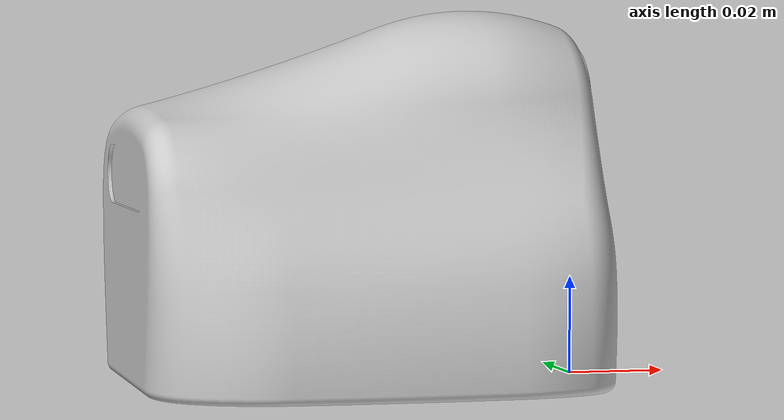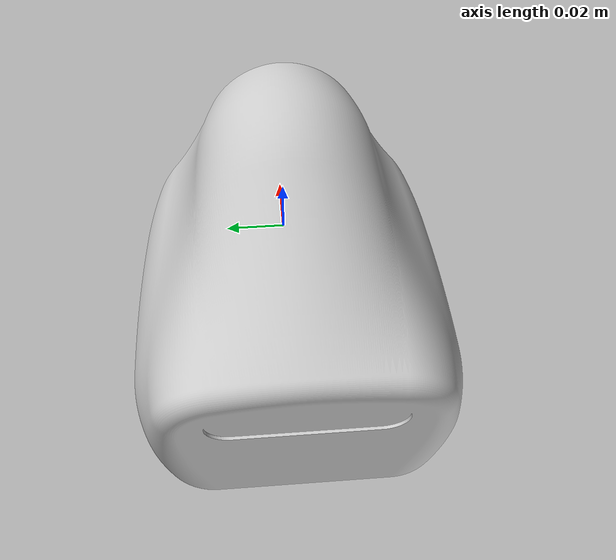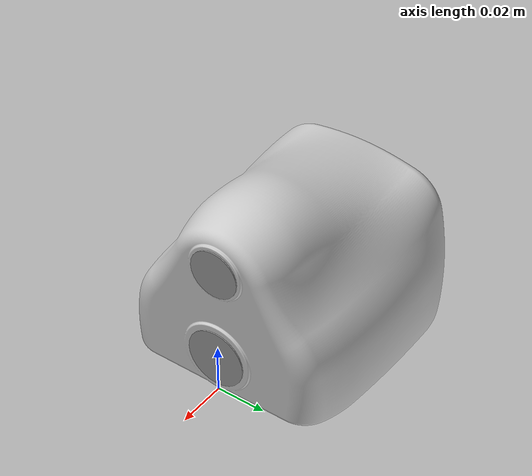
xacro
<?xml version="1.0"?>
<robot name="toroboeye_sl40" xmlns:xacro="http://ros.org/wiki/xacro">
  <xacro:arg name="prefix" default="toroboeye"/>
  <xacro:property name="M_PI" value="3.1415926535897931"/>
  <link name="$(arg prefix)/base_link"/>
  <joint name="$(arg prefix)/body_joint" type="fixed">
    <parent link="$(arg prefix)/base_link"/>
    <child  link="$(arg prefix)/camera_link"/>
    <origin xyz="0 0 0" rpy="0 0 0" />
  </joint>
  <link name="$(arg prefix)/camera_link">
    <visual>
      <geometry>
        <mesh filename="package://toroboeye_description/meshes/SL40.stl" scale="0.001 0.001 0.001"/>
      </geometry>
      <origin xyz="0 0 0" rpy="0 0 ${90*M_PI/180}"/>
      <material name="gray">
        <color rgba="0.8 0.8 0.8 1.0"/>
      </material>
    </visual>
    <visual>
      <geometry>
        <cylinder radius="0.012" length="0.003"/>
      </geometry>
      <origin xyz="0 0 0.016" rpy="0 ${90*M_PI/180} 0"/>
      <material name="black">
        <color rgba="0.6 0.6 0.6 1.0"/>
      </material>
    </visual>
    <visual>
      <geometry>
        <cylinder radius="0.01" length="0.003"/>
      </geometry>
      <origin xyz="0 0 0.056" rpy="0 ${90*M_PI/180} 0"/>
      <material name="black">
        <color rgba="0.6 0.6 0.6 1.0"/>
      </material>
    </visual>
  </link>
  <joint name="$(arg prefix)/camera_frame_joint" type="fixed">
    <parent link="$(arg prefix)/camera_link"/>
    <child  link="$(arg prefix)/camera_frame"/>
    <origin xyz="0 0 0.056" rpy="0 0 0" />
  </joint>
  <link name="$(arg prefix)/camera_frame">
  </link>
  <joint name="$(arg prefix)/camera_optical_frame_joint" type="fixed">
    <parent link="$(arg prefix)/camera_frame"/>
    <child  link="$(arg prefix)/camera_optical_frame"/>
    <origin xyz="0 0 0" rpy="${-(90-8.277)*M_PI/180} 0 ${-90*M_PI/180}" />
  </joint>
  <link name="$(arg prefix)/camera_optical_frame">
  </link>
</robot>
